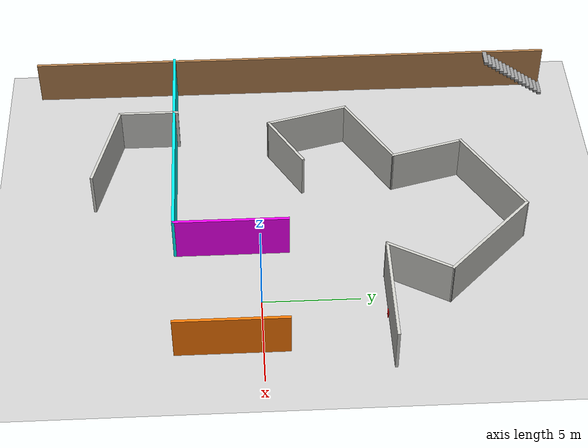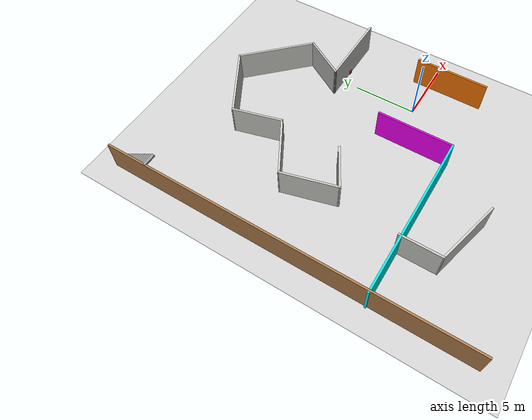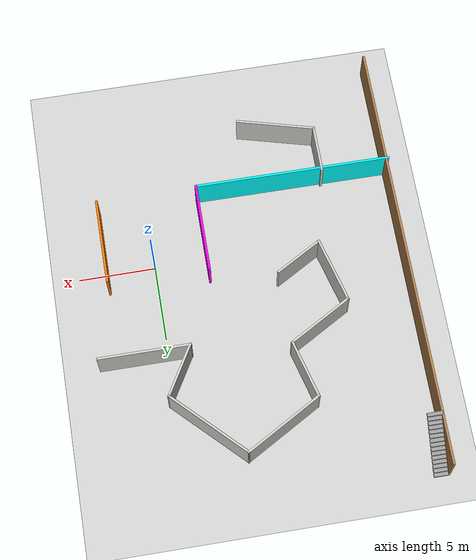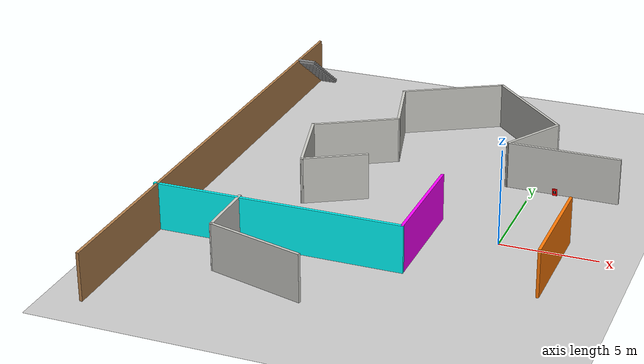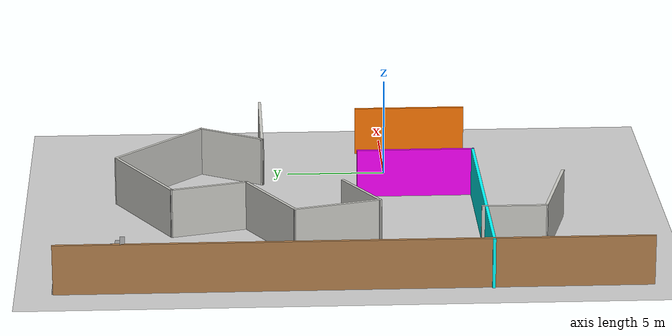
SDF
<sdf version="1.7">
 <world name="default">
  <model name="ground_plane">
   <static>true</static>
   <link name="link">
    <collision name="collision">
     <geometry><plane><normal>0 0 1</normal><size>100 100</size></plane></geometry>
    </collision>
    <visual name="visual">
     <geometry><plane><normal>0 0 1</normal><size>100 100</size></plane></geometry>
     <material>
      <ambient>0.8 0.8 0.8 1</ambient>
      <diffuse>0.8 0.8 0.8 1</diffuse>
      <specular>0.8 0.8 0.8 1</specular>
     </material>
    </visual>
   </link>
  </model>
  <model name="AMR_navigation_world">
   <link name="Stairs_0">
    <visual name="Stairs_0_Visual_0">
     <pose>-19.7483 14.2861 0.083333 0 -0 0</pose>
     <geometry><box><size>1 0.233333 0.166667</size></box></geometry>
     <material>
      <script><uri>file://media/materials/scripts/gazebo.material</uri><name>Gazebo/Grey</name></script>
      <ambient>1 1 1 1</ambient>
      <shader type="pixel"/>
     </material>
     <meta><layer>0</layer></meta>
    </visual>
    <visual name="Stairs_0_Visual_1">
     <pose>-19.7483 14.0528 0.25 0 -0 0</pose>
     <geometry><box><size>1 0.233333 0.166667</size></box></geometry>
     <material>
      <script><uri>file://media/materials/scripts/gazebo.material</uri><name>Gazebo/Grey</name></script>
      <ambient>1 1 1 1</ambient>
      <shader type="pixel"/>
     </material>
     <meta><layer>0</layer></meta>
    </visual>
    <visual name="Stairs_0_Visual_2">
     <pose>-19.7483 13.8195 0.416667 0 -0 0</pose>
     <geometry><box><size>1 0.233333 0.166667</size></box></geometry>
     <material>
      <script><uri>file://media/materials/scripts/gazebo.material</uri><name>Gazebo/Grey</name></script>
      <ambient>1 1 1 1</ambient>
      <shader type="pixel"/>
     </material>
     <meta><layer>0</layer></meta>
    </visual>
    <visual name="Stairs_0_Visual_3">
     <pose>-19.7483 13.5861 0.583333 0 -0 0</pose>
     <geometry><box><size>1 0.233333 0.166667</size></box></geometry>
     <material>
      <script><uri>file://media/materials/scripts/gazebo.material</uri><name>Gazebo/Grey</name></script>
      <ambient>1 1 1 1</ambient>
      <shader type="pixel"/>
     </material>
     <meta><layer>0</layer></meta>
    </visual>
    <visual name="Stairs_0_Visual_4">
     <pose>-19.7483 13.3528 0.75 0 -0 0</pose>
     <geometry><box><size>1 0.233333 0.166667</size></box></geometry>
     <material>
      <script><uri>file://media/materials/scripts/gazebo.material</uri><name>Gazebo/Grey</name></script>
      <ambient>1 1 1 1</ambient>
      <shader type="pixel"/>
     </material>
     <meta><layer>0</layer></meta>
    </visual>
    <visual name="Stairs_0_Visual_5">
     <pose>-19.7483 13.1195 0.916667 0 -0 0</pose>
     <geometry><box><size>1 0.233333 0.166667</size></box></geometry>
     <material>
      <script><uri>file://media/materials/scripts/gazebo.material</uri><name>Gazebo/Grey</name></script>
      <ambient>1 1 1 1</ambient>
      <shader type="pixel"/>
     </material>
     <meta><layer>0</layer></meta>
    </visual>
    <visual name="Stairs_0_Visual_6">
     <pose>-19.7483 12.8861 1.08333 0 -0 0</pose>
     <geometry><box><size>1 0.233333 0.166667</size></box></geometry>
     <material>
      <script><uri>file://media/materials/scripts/gazebo.material</uri><name>Gazebo/Grey</name></script>
      <ambient>1 1 1 1</ambient>
      <shader type="pixel"/>
     </material>
     <meta><layer>0</layer></meta>
    </visual>
    <visual name="Stairs_0_Visual_7">
     <pose>-19.7483 12.6528 1.25 0 -0 0</pose>
     <geometry><box><size>1 0.233333 0.166667</size></box></geometry>
     <material>
      <script><uri>file://media/materials/scripts/gazebo.material</uri><name>Gazebo/Grey</name></script>
      <ambient>1 1 1 1</ambient>
      <shader type="pixel"/>
     </material>
     <meta><layer>0</layer></meta>
    </visual>
    <visual name="Stairs_0_Visual_8">
     <pose>-19.7483 12.4195 1.41667 0 -0 0</pose>
     <geometry><box><size>1 0.233333 0.166667</size></box></geometry>
     <material>
      <script><uri>file://media/materials/scripts/gazebo.material</uri><name>Gazebo/Grey</name></script>
      <ambient>1 1 1 1</ambient>
      <shader type="pixel"/>
     </material>
     <meta><layer>0</layer></meta>
    </visual>
    <visual name="Stairs_0_Visual_9">
     <pose>-19.7483 12.1861 1.58333 0 -0 0</pose>
     <geometry><box><size>1 0.233333 0.166667</size></box></geometry>
     <material>
      <script><uri>file://media/materials/scripts/gazebo.material</uri><name>Gazebo/Grey</name></script>
      <ambient>1 1 1 1</ambient>
      <shader type="pixel"/>
     </material>
     <meta><layer>0</layer></meta>
    </visual>
    <visual name="Stairs_0_Visual_10">
     <pose>-19.7483 11.9528 1.75 0 -0 0</pose>
     <geometry><box><size>1 0.233333 0.166667</size></box></geometry>
     <material>
      <script><uri>file://media/materials/scripts/gazebo.material</uri><name>Gazebo/Grey</name></script>
      <ambient>1 1 1 1</ambient>
      <shader type="pixel"/>
     </material>
     <meta><layer>0</layer></meta>
    </visual>
    <visual name="Stairs_0_Visual_11">
     <pose>-19.7483 11.7195 1.91667 0 -0 0</pose>
     <geometry><box><size>1 0.233333 0.166667</size></box></geometry>
     <material>
      <script><uri>file://media/materials/scripts/gazebo.material</uri><name>Gazebo/Grey</name></script>
      <ambient>1 1 1 1</ambient>
      <shader type="pixel"/>
     </material>
     <meta><layer>0</layer></meta>
    </visual>
    <visual name="Stairs_0_Visual_12">
     <pose>-19.7483 11.4861 2.08333 0 -0 0</pose>
     <geometry><box><size>1 0.233333 0.166667</size></box></geometry>
     <material>
      <script><uri>file://media/materials/scripts/gazebo.material</uri><name>Gazebo/Grey</name></script>
      <ambient>1 1 1 1</ambient>
      <shader type="pixel"/>
     </material>
     <meta><layer>0</layer></meta>
    </visual>
    <visual name="Stairs_0_Visual_13">
     <pose>-19.7483 11.2528 2.25 0 -0 0</pose>
     <geometry><box><size>1 0.233333 0.166667</size></box></geometry>
     <material>
      <script><uri>file://media/materials/scripts/gazebo.material</uri><name>Gazebo/Grey</name></script>
      <ambient>1 1 1 1</ambient>
      <shader type="pixel"/>
     </material>
     <meta><layer>0</layer></meta>
    </visual>
    <visual name="Stairs_0_Visual_14">
     <pose>-19.7483 11.0195 2.41667 0 -0 0</pose>
     <geometry><box><size>1 0.233333 0.166667</size></box></geometry>
     <material>
      <script><uri>file://media/materials/scripts/gazebo.material</uri><name>Gazebo/Grey</name></script>
      <ambient>1 1 1 1</ambient>
      <shader type="pixel"/>
     </material>
     <meta><layer>0</layer></meta>
    </visual>
    <collision name="Stairs_0_Collision_0">
     <pose>-19.7483 14.2861 0.083333 0 -0 0</pose>
     <geometry><box><size>1 0.233333 0.166667</size></box></geometry>
     <surface>
      <friction>
       <ode><mu>1</mu><mu2>1</mu2><fdir1>0 0 0</fdir1><slip1>0</slip1><slip2>0</slip2></ode>
       <torsional>
        <coefficient>1</coefficient>
        <patch_radius>0</patch_radius>
        <surface_radius>0</surface_radius>
        <use_patch_radius>1</use_patch_radius>
        <ode><slip>0</slip></ode>
       </torsional>
      </friction>
      <bounce><restitution_coefficient>0</restitution_coefficient><threshold>1e+06</threshold></bounce>
      <contact>
       <collide_without_contact>0</collide_without_contact>
       <collide_without_contact_bitmask>1</collide_without_contact_bitmask>
       <collide_bitmask>1</collide_bitmask>
       <ode>
        <soft_cfm>0</soft_cfm>
        <soft_erp>0.2</soft_erp>
        <kp>1e+13</kp>
        <kd>1</kd>
        <max_vel>0.01</max_vel>
        <min_depth>0</min_depth>
       </ode>
       <bullet>
        <split_impulse>1</split_impulse>
        <split_impulse_penetration_threshold>-0.01</split_impulse_penetration_threshold>
        <soft_cfm>0</soft_cfm>
        <soft_erp>0.2</soft_erp>
        <kp>1e+13</kp>
        <kd>1</kd>
       </bullet>
      </contact>
     </surface>
    </collision>
    <collision name="Stairs_0_Collision_1">
     <pose>-19.7483 14.0528 0.25 0 -0 0</pose>
     <geometry><box><size>1 0.233333 0.166667</size></box></geometry>
     <surface>
      <friction>
       <ode><mu>1</mu><mu2>1</mu2><fdir1>0 0 0</fdir1><slip1>0</slip1><slip2>0</slip2></ode>
       <torsional>
        <coefficient>1</coefficient>
        <patch_radius>0</patch_radius>
        <surface_radius>0</surface_radius>
        <use_patch_radius>1</use_patch_radius>
        <ode><slip>0</slip></ode>
       </torsional>
      </friction>
      <bounce><restitution_coefficient>0</restitution_coefficient><threshold>1e+06</threshold></bounce>
      <contact>
       <collide_without_contact>0</collide_without_contact>
       <collide_without_contact_bitmask>1</collide_without_contact_bitmask>
       <collide_bitmask>1</collide_bitmask>
       <ode>
        <soft_cfm>0</soft_cfm>
        <soft_erp>0.2</soft_erp>
        <kp>1e+13</kp>
        <kd>1</kd>
        <max_vel>0.01</max_vel>
        <min_depth>0</min_depth>
       </ode>
       <bullet>
        <split_impulse>1</split_impulse>
        <split_impulse_penetration_threshold>-0.01</split_impulse_penetration_threshold>
        <soft_cfm>0</soft_cfm>
        <soft_erp>0.2</soft_erp>
        <kp>1e+13</kp>
        <kd>1</kd>
       </bullet>
      </contact>
     </surface>
    </collision>
    <collision name="Stairs_0_Collision_2">
     <pose>-19.7483 13.8195 0.416667 0 -0 0</pose>
     <geometry><box><size>1 0.233333 0.166667</size></box></geometry>
     <surface>
      <friction>
       <ode><mu>1</mu><mu2>1</mu2><fdir1>0 0 0</fdir1><slip1>0</slip1><slip2>0</slip2></ode>
       <torsional>
        <coefficient>1</coefficient>
        <patch_radius>0</patch_radius>
        <surface_radius>0</surface_radius>
        <use_patch_radius>1</use_patch_radius>
        <ode><slip>0</slip></ode>
       </torsional>
      </friction>
      <bounce><restitution_coefficient>0</restitution_coefficient><threshold>1e+06</threshold></bounce>
      <contact>
       <collide_without_contact>0</collide_without_contact>
       <collide_without_contact_bitmask>1</collide_without_contact_bitmask>
       <collide_bitmask>1</collide_bitmask>
       <ode>
        <soft_cfm>0</soft_cfm>
        <soft_erp>0.2</soft_erp>
        <kp>1e+13</kp>
        <kd>1</kd>
        <max_vel>0.01</max_vel>
        <min_depth>0</min_depth>
       </ode>
       <bullet>
        <split_impulse>1</split_impulse>
        <split_impulse_penetration_threshold>-0.01</split_impulse_penetration_threshold>
        <soft_cfm>0</soft_cfm>
        <soft_erp>0.2</soft_erp>
        <kp>1e+13</kp>
        <kd>1</kd>
       </bullet>
      </contact>
     </surface>
    </collision>
    <collision name="Stairs_0_Collision_3">
     <pose>-19.7483 13.5861 0.583333 0 -0 0</pose>
     <geometry><box><size>1 0.233333 0.166667</size></box></geometry>
     <surface>
      <friction>
       <ode><mu>1</mu><mu2>1</mu2><fdir1>0 0 0</fdir1><slip1>0</slip1><slip2>0</slip2></ode>
       <torsional>
        <coefficient>1</coefficient>
        <patch_radius>0</patch_radius>
        <surface_radius>0</surface_radius>
        <use_patch_radius>1</use_patch_radius>
        <ode><slip>0</slip></ode>
       </torsional>
      </friction>
      <bounce><restitution_coefficient>0</restitution_coefficient><threshold>1e+06</threshold></bounce>
      <contact>
       <collide_without_contact>0</collide_without_contact>
       <collide_without_contact_bitmask>1</collide_without_contact_bitmask>
       <collide_bitmask>1</collide_bitmask>
       <ode>
        <soft_cfm>0</soft_cfm>
        <soft_erp>0.2</soft_erp>
        <kp>1e+13</kp>
        <kd>1</kd>
        <max_vel>0.01</max_vel>
        <min_depth>0</min_depth>
       </ode>
       <bullet>
        <split_impulse>1</split_impulse>
        <split_impulse_penetration_threshold>-0.01</split_impulse_penetration_threshold>
        <soft_cfm>0</soft_cfm>
        <soft_erp>0.2</soft_erp>
        <kp>1e+13</kp>
        <kd>1</kd>
       </bullet>
      </contact>
     </surface>
    </collision>
    <collision name="Stairs_0_Collision_4">
     <pose>-19.7483 13.3528 0.75 0 -0 0</pose>
     <geometry><box><size>1 0.233333 0.166667</size></box></geometry>
     <surface>
      <friction>
       <ode><mu>1</mu><mu2>1</mu2><fdir1>0 0 0</fdir1><slip1>0</slip1><slip2>0</slip2></ode>
       <torsional>
        <coefficient>1</coefficient>
        <patch_radius>0</patch_radius>
        <surface_radius>0</surface_radius>
        <use_patch_radius>1</use_patch_radius>
        <ode><slip>0</slip></ode>
       </torsional>
      </friction>
      <bounce><restitution_coefficient>0</restitution_coefficient><threshold>1e+06</threshold></bounce>
      <contact>
       <collide_without_contact>0</collide_without_contact>
       <collide_without_contact_bitmask>1</collide_without_contact_bitmask>
       <collide_bitmask>1</collide_bitmask>
       <ode>
        <soft_cfm>0</soft_cfm>
        <soft_erp>0.2</soft_erp>
        <kp>1e+13</kp>
        <kd>1</kd>
        <max_vel>0.01</max_vel>
        <min_depth>0</min_depth>
       </ode>
       <bullet>
        <split_impulse>1</split_impulse>
        <split_impulse_penetration_threshold>-0.01</split_impulse_penetration_threshold>
        <soft_cfm>0</soft_cfm>
        <soft_erp>0.2</soft_erp>
        <kp>1e+13</kp>
        <kd>1</kd>
       </bullet>
      </contact>
     </surface>
    </collision>
    <collision name="Stairs_0_Collision_5">
     <pose>-19.7483 13.1195 0.916667 0 -0 0</pose>
     <geometry><box><size>1 0.233333 0.166667</size></box></geometry>
     <surface>
      <friction>
       <ode><mu>1</mu><mu2>1</mu2><fdir1>0 0 0</fdir1><slip1>0</slip1><slip2>0</slip2></ode>
       <torsional>
        <coefficient>1</coefficient>
        <patch_radius>0</patch_radius>
        <surface_radius>0</surface_radius>
        <use_patch_radius>1</use_patch_radius>
        <ode><slip>0</slip></ode>
       </torsional>
      </friction>
      <bounce><restitution_coefficient>0</restitution_coefficient><threshold>1e+06</threshold></bounce>
      <contact>
       <collide_without_contact>0</collide_without_contact>
       <collide_without_contact_bitmask>1</collide_without_contact_bitmask>
       <collide_bitmask>1</collide_bitmask>
       <ode>
        <soft_cfm>0</soft_cfm>
        <soft_erp>0.2</soft_erp>
        <kp>1e+13</kp>
        <kd>1</kd>
        <max_vel>0.01</max_vel>
        <min_depth>0</min_depth>
       </ode>
       <bullet>
        <split_impulse>1</split_impulse>
        <split_impulse_penetration_threshold>-0.01</split_impulse_penetration_threshold>
        <soft_cfm>0</soft_cfm>
        <soft_erp>0.2</soft_erp>
        <kp>1e+13</kp>
        <kd>1</kd>
       </bullet>
      </contact>
     </surface>
    </collision>
    <collision name="Stairs_0_Collision_6">
     <pose>-19.7483 12.8861 1.08333 0 -0 0</pose>
     <geometry><box><size>1 0.233333 0.166667</size></box></geometry>
     <surface>
      <friction>
       <ode><mu>1</mu><mu2>1</mu2><fdir1>0 0 0</fdir1><slip1>0</slip1><slip2>0</slip2></ode>
       <torsional>
        <coefficient>1</coefficient>
        <patch_radius>0</patch_radius>
        <surface_radius>0</surface_radius>
        <use_patch_radius>1</use_patch_radius>
        <ode><slip>0</slip></ode>
       </torsional>
      </friction>
      <bounce><restitution_coefficient>0</restitution_coefficient><threshold>1e+06</threshold></bounce>
      <contact>
       <collide_without_contact>0</collide_without_contact>
       <collide_without_contact_bitmask>1</collide_without_contact_bitmask>
       <collide_bitmask>1</collide_bitmask>
       <ode>
        <soft_cfm>0</soft_cfm>
        <soft_erp>0.2</soft_erp>
        <kp>1e+13</kp>
        <kd>1</kd>
        <max_vel>0.01</max_vel>
        <min_depth>0</min_depth>
       </ode>
       <bullet>
        <split_impulse>1</split_impulse>
        <split_impulse_penetration_threshold>-0.01</split_impulse_penetration_threshold>
        <soft_cfm>0</soft_cfm>
        <soft_erp>0.2</soft_erp>
        <kp>1e+13</kp>
        <kd>1</kd>
       </bullet>
      </contact>
     </surface>
    </collision>
    <collision name="Stairs_0_Collision_7">
     <pose>-19.7483 12.6528 1.25 0 -0 0</pose>
     <geometry><box><size>1 0.233333 0.166667</size></box></geometry>
     <surface>
      <friction>
       <ode><mu>1</mu><mu2>1</mu2><fdir1>0 0 0</fdir1><slip1>0</slip1><slip2>0</slip2></ode>
       <torsional>
        <coefficient>1</coefficient>
        <patch_radius>0</patch_radius>
        <surface_radius>0</surface_radius>
        <use_patch_radius>1</use_patch_radius>
        <ode><slip>0</slip></ode>
       </torsional>
      </friction>
      <bounce><restitution_coefficient>0</restitution_coefficient><threshold>1e+06</threshold></bounce>
      <contact>
       <collide_without_contact>0</collide_without_contact>
       <collide_without_contact_bitmask>1</collide_without_contact_bitmask>
       <collide_bitmask>1</collide_bitmask>
       <ode>
        <soft_cfm>0</soft_cfm>
        <soft_erp>0.2</soft_erp>
        <kp>1e+13</kp>
        <kd>1</kd>
        <max_vel>0.01</max_vel>
        <min_depth>0</min_depth>
       </ode>
       <bullet>
        <split_impulse>1</split_impulse>
        <split_impulse_penetration_threshold>-0.01</split_impulse_penetration_threshold>
        <soft_cfm>0</soft_cfm>
        <soft_erp>0.2</soft_erp>
        <kp>1e+13</kp>
        <kd>1</kd>
       </bullet>
      </contact>
     </surface>
    </collision>
    <collision name="Stairs_0_Collision_8">
     <pose>-19.7483 12.4195 1.41667 0 -0 0</pose>
     <geometry><box><size>1 0.233333 0.166667</size></box></geometry>
     <surface>
      <friction>
       <ode><mu>1</mu><mu2>1</mu2><fdir1>0 0 0</fdir1><slip1>0</slip1><slip2>0</slip2></ode>
       <torsional>
        <coefficient>1</coefficient>
        <patch_radius>0</patch_radius>
        <surface_radius>0</surface_radius>
        <use_patch_radius>1</use_patch_radius>
        <ode><slip>0</slip></ode>
       </torsional>
      </friction>
      <bounce><restitution_coefficient>0</restitution_coefficient><threshold>1e+06</threshold></bounce>
      <contact>
       <collide_without_contact>0</collide_without_contact>
       <collide_without_contact_bitmask>1</collide_without_contact_bitmask>
       <collide_bitmask>1</collide_bitmask>
       <ode>
        <soft_cfm>0</soft_cfm>
        <soft_erp>0.2</soft_erp>
        <kp>1e+13</kp>
        <kd>1</kd>
        <max_vel>0.01</max_vel>
        <min_depth>0</min_depth>
       </ode>
       <bullet>
        <split_impulse>1</split_impulse>
        <split_impulse_penetration_threshold>-0.01</split_impulse_penetration_threshold>
        <soft_cfm>0</soft_cfm>
        <soft_erp>0.2</soft_erp>
        <kp>1e+13</kp>
        <kd>1</kd>
       </bullet>
      </contact>
     </surface>
    </collision>
    <collision name="Stairs_0_Collision_9">
     <pose>-19.7483 12.1861 1.58333 0 -0 0</pose>
     <geometry><box><size>1 0.233333 0.166667</size></box></geometry>
     <surface>
      <friction>
       <ode><mu>1</mu><mu2>1</mu2><fdir1>0 0 0</fdir1><slip1>0</slip1><slip2>0</slip2></ode>
       <torsional>
        <coefficient>1</coefficient>
        <patch_radius>0</patch_radius>
        <surface_radius>0</surface_radius>
        <use_patch_radius>1</use_patch_radius>
        <ode><slip>0</slip></ode>
       </torsional>
      </friction>
      <bounce><restitution_coefficient>0</restitution_coefficient><threshold>1e+06</threshold></bounce>
      <contact>
       <collide_without_contact>0</collide_without_contact>
       <collide_without_contact_bitmask>1</collide_without_contact_bitmask>
       <collide_bitmask>1</collide_bitmask>
       <ode>
        <soft_cfm>0</soft_cfm>
        <soft_erp>0.2</soft_erp>
        <kp>1e+13</kp>
        <kd>1</kd>
        <max_vel>0.01</max_vel>
        <min_depth>0</min_depth>
       </ode>
       <bullet>
        <split_impulse>1</split_impulse>
        <split_impulse_penetration_threshold>-0.01</split_impulse_penetration_threshold>
        <soft_cfm>0</soft_cfm>
        <soft_erp>0.2</soft_erp>
        <kp>1e+13</kp>
        <kd>1</kd>
       </bullet>
      </contact>
     </surface>
    </collision>
    <collision name="Stairs_0_Collision_10">
     <pose>-19.7483 11.9528 1.75 0 -0 0</pose>
     <geometry><box><size>1 0.233333 0.166667</size></box></geometry>
     <surface>
      <friction>
       <ode><mu>1</mu><mu2>1</mu2><fdir1>0 0 0</fdir1><slip1>0</slip1><slip2>0</slip2></ode>
       <torsional>
        <coefficient>1</coefficient>
        <patch_radius>0</patch_radius>
        <surface_radius>0</surface_radius>
        <use_patch_radius>1</use_patch_radius>
        <ode><slip>0</slip></ode>
       </torsional>
      </friction>
      <bounce><restitution_coefficient>0</restitution_coefficient><threshold>1e+06</threshold></bounce>
      <contact>
       <collide_without_contact>0</collide_without_contact>
       <collide_without_contact_bitmask>1</collide_without_contact_bitmask>
       <collide_bitmask>1</collide_bitmask>
       <ode>
        <soft_cfm>0</soft_cfm>
        <soft_erp>0.2</soft_erp>
        <kp>1e+13</kp>
        <kd>1</kd>
        <max_vel>0.01</max_vel>
        <min_depth>0</min_depth>
       </ode>
       <bullet>
        <split_impulse>1</split_impulse>
        <split_impulse_penetration_threshold>-0.01</split_impulse_penetration_threshold>
        <soft_cfm>0</soft_cfm>
        <soft_erp>0.2</soft_erp>
        <kp>1e+13</kp>
        <kd>1</kd>
       </bullet>
      </contact>
     </surface>
    </collision>
    <collision name="Stairs_0_Collision_11">
     <pose>-19.7483 11.7195 1.91667 0 -0 0</pose>
     <geometry><box><size>1 0.233333 0.166667</size></box></geometry>
     <surface>
      <friction>
       <ode><mu>1</mu><mu2>1</mu2><fdir1>0 0 0</fdir1><slip1>0</slip1><slip2>0</slip2></ode>
       <torsional>
        <coefficient>1</coefficient>
        <patch_radius>0</patch_radius>
        <surface_radius>0</surface_radius>
        <use_patch_radius>1</use_patch_radius>
        <ode><slip>0</slip></ode>
       </torsional>
      </friction>
      <bounce><restitution_coefficient>0</restitution_coefficient><threshold>1e+06</threshold></bounce>
      <contact>
       <collide_without_contact>0</collide_without_contact>
       <collide_without_contact_bitmask>1</collide_without_contact_bitmask>
       <collide_bitmask>1</collide_bitmask>
       <ode>
        <soft_cfm>0</soft_cfm>
        <soft_erp>0.2</soft_erp>
        <kp>1e+13</kp>
        <kd>1</kd>
        <max_vel>0.01</max_vel>
        <min_depth>0</min_depth>
       </ode>
       <bullet>
        <split_impulse>1</split_impulse>
        <split_impulse_penetration_threshold>-0.01</split_impulse_penetration_threshold>
        <soft_cfm>0</soft_cfm>
        <soft_erp>0.2</soft_erp>
        <kp>1e+13</kp>
        <kd>1</kd>
       </bullet>
      </contact>
     </surface>
    </collision>
    <collision name="Stairs_0_Collision_12">
     <pose>-19.7483 11.4861 2.08333 0 -0 0</pose>
     <geometry><box><size>1 0.233333 0.166667</size></box></geometry>
     <surface>
      <friction>
       <ode><mu>1</mu><mu2>1</mu2><fdir1>0 0 0</fdir1><slip1>0</slip1><slip2>0</slip2></ode>
       <torsional>
        <coefficient>1</coefficient>
        <patch_radius>0</patch_radius>
        <surface_radius>0</surface_radius>
        <use_patch_radius>1</use_patch_radius>
        <ode><slip>0</slip></ode>
       </torsional>
      </friction>
      <bounce><restitution_coefficient>0</restitution_coefficient><threshold>1e+06</threshold></bounce>
      <contact>
       <collide_without_contact>0</collide_without_contact>
       <collide_without_contact_bitmask>1</collide_without_contact_bitmask>
       <collide_bitmask>1</collide_bitmask>
       <ode>
        <soft_cfm>0</soft_cfm>
        <soft_erp>0.2</soft_erp>
        <kp>1e+13</kp>
        <kd>1</kd>
        <max_vel>0.01</max_vel>
        <min_depth>0</min_depth>
       </ode>
       <bullet>
        <split_impulse>1</split_impulse>
        <split_impulse_penetration_threshold>-0.01</split_impulse_penetration_threshold>
        <soft_cfm>0</soft_cfm>
        <soft_erp>0.2</soft_erp>
        <kp>1e+13</kp>
        <kd>1</kd>
       </bullet>
      </contact>
     </surface>
    </collision>
    <collision name="Stairs_0_Collision_13">
     <pose>-19.7483 11.2528 2.25 0 -0 0</pose>
     <geometry><box><size>1 0.233333 0.166667</size></box></geometry>
     <surface>
      <friction>
       <ode><mu>1</mu><mu2>1</mu2><fdir1>0 0 0</fdir1><slip1>0</slip1><slip2>0</slip2></ode>
       <torsional>
        <coefficient>1</coefficient>
        <patch_radius>0</patch_radius>
        <surface_radius>0</surface_radius>
        <use_patch_radius>1</use_patch_radius>
        <ode><slip>0</slip></ode>
       </torsional>
      </friction>
      <bounce><restitution_coefficient>0</restitution_coefficient><threshold>1e+06</threshold></bounce>
      <contact>
       <collide_without_contact>0</collide_without_contact>
       <collide_without_contact_bitmask>1</collide_without_contact_bitmask>
       <collide_bitmask>1</collide_bitmask>
       <ode>
        <soft_cfm>0</soft_cfm>
        <soft_erp>0.2</soft_erp>
        <kp>1e+13</kp>
        <kd>1</kd>
        <max_vel>0.01</max_vel>
        <min_depth>0</min_depth>
       </ode>
       <bullet>
        <split_impulse>1</split_impulse>
        <split_impulse_penetration_threshold>-0.01</split_impulse_penetration_threshold>
        <soft_cfm>0</soft_cfm>
        <soft_erp>0.2</soft_erp>
        <kp>1e+13</kp>
        <kd>1</kd>
       </bullet>
      </contact>
     </surface>
    </collision>
    <collision name="Stairs_0_Collision_14">
     <pose>-19.7483 11.0195 2.41667 0 -0 0</pose>
     <geometry><box><size>1 0.233333 0.166667</size></box></geometry>
     <surface>
      <friction>
       <ode><mu>1</mu><mu2>1</mu2><fdir1>0 0 0</fdir1><slip1>0</slip1><slip2>0</slip2></ode>
       <torsional>
        <coefficient>1</coefficient>
        <patch_radius>0</patch_radius>
        <surface_radius>0</surface_radius>
        <use_patch_radius>1</use_patch_radius>
        <ode><slip>0</slip></ode>
       </torsional>
      </friction>
      <bounce><restitution_coefficient>0</restitution_coefficient><threshold>1e+06</threshold></bounce>
      <contact>
       <collide_without_contact>0</collide_without_contact>
       <collide_without_contact_bitmask>1</collide_without_contact_bitmask>
       <collide_bitmask>1</collide_bitmask>
       <ode>
        <soft_cfm>0</soft_cfm>
        <soft_erp>0.2</soft_erp>
        <kp>1e+13</kp>
        <kd>1</kd>
        <max_vel>0.01</max_vel>
        <min_depth>0</min_depth>
       </ode>
       <bullet>
        <split_impulse>1</split_impulse>
        <split_impulse_penetration_threshold>-0.01</split_impulse_penetration_threshold>
        <soft_cfm>0</soft_cfm>
        <soft_erp>0.2</soft_erp>
        <kp>1e+13</kp>
        <kd>1</kd>
       </bullet>
      </contact>
     </surface>
    </collision>
   </link>
   <link name="Wall_11">
    <pose>-20.2378 -0.027791 0 0 -0 1.5708</pose>
    <visual name="Wall_11_Visual">
     <pose>0 0 1.25 0 -0 0</pose>
     <geometry><box><size>28.75 0.15 2.5</size></box></geometry>
     <material>
      <script><uri>file://media/materials/scripts/gazebo.material</uri><name>Gazebo/Wood</name></script>
      <ambient>1 0 0 1</ambient>
      <shader type="pixel"/>
     </material>
     <meta><layer>0</layer></meta>
    </visual>
    <collision name="Wall_11_Collision">
     <pose>0 0 1.25 0 -0 0</pose>
     <geometry><box><size>28.75 0.15 2.5</size></box></geometry>
     <surface>
      <friction>
       <ode><mu>1</mu><mu2>1</mu2><fdir1>0 0 0</fdir1><slip1>0</slip1><slip2>0</slip2></ode>
       <torsional>
        <coefficient>1</coefficient>
        <patch_radius>0</patch_radius>
        <surface_radius>0</surface_radius>
        <use_patch_radius>1</use_patch_radius>
        <ode><slip>0</slip></ode>
       </torsional>
      </friction>
      <bounce><restitution_coefficient>0</restitution_coefficient><threshold>1e+06</threshold></bounce>
      <contact>
       <collide_without_contact>0</collide_without_contact>
       <collide_without_contact_bitmask>1</collide_without_contact_bitmask>
       <collide_bitmask>1</collide_bitmask>
       <ode>
        <soft_cfm>0</soft_cfm>
        <soft_erp>0.2</soft_erp>
        <kp>1e+13</kp>
        <kd>1</kd>
        <max_vel>0.01</max_vel>
        <min_depth>0</min_depth>
       </ode>
       <bullet>
        <split_impulse>1</split_impulse>
        <split_impulse_penetration_threshold>-0.01</split_impulse_penetration_threshold>
        <soft_cfm>0</soft_cfm>
        <soft_erp>0.2</soft_erp>
        <kp>1e+13</kp>
        <kd>1</kd>
       </bullet>
      </contact>
     </surface>
    </collision>
   </link>
   <link name="Wall_16">
    <pose>-7.51223 -3.73191 0 0 0 -1.5708</pose>
    <visual name="Wall_16_Visual">
     <pose>0 0 1.25 0 -0 0</pose>
     <geometry><box><size>6 0.15 2.5</size></box></geometry>
     <material>
      <script><uri>file://media/materials/scripts/gazebo.material</uri><name>Gazebo/Grey</name></script>
      <ambient>1 0 1 1</ambient>
      <shader type="pixel"/>
     </material>
     <meta><layer>0</layer></meta>
    </visual>
    <collision name="Wall_16_Collision">
     <pose>0 0 1.25 0 -0 0</pose>
     <geometry><box><size>6 0.15 2.5</size></box></geometry>
     <surface>
      <friction>
       <ode><mu>1</mu><mu2>1</mu2><fdir1>0 0 0</fdir1><slip1>0</slip1><slip2>0</slip2></ode>
       <torsional>
        <coefficient>1</coefficient>
        <patch_radius>0</patch_radius>
        <surface_radius>0</surface_radius>
        <use_patch_radius>1</use_patch_radius>
        <ode><slip>0</slip></ode>
       </torsional>
      </friction>
      <bounce><restitution_coefficient>0</restitution_coefficient><threshold>1e+06</threshold></bounce>
      <contact>
       <collide_without_contact>0</collide_without_contact>
       <collide_without_contact_bitmask>1</collide_without_contact_bitmask>
       <collide_bitmask>1</collide_bitmask>
       <ode>
        <soft_cfm>0</soft_cfm>
        <soft_erp>0.2</soft_erp>
        <kp>1e+13</kp>
        <kd>1</kd>
        <max_vel>0.01</max_vel>
        <min_depth>0</min_depth>
       </ode>
       <bullet>
        <split_impulse>1</split_impulse>
        <split_impulse_penetration_threshold>-0.01</split_impulse_penetration_threshold>
        <soft_cfm>0</soft_cfm>
        <soft_erp>0.2</soft_erp>
        <kp>1e+13</kp>
        <kd>1</kd>
       </bullet>
      </contact>
     </surface>
    </collision>
   </link>
   <link name="Wall_17">
    <pose>-13.9372 -6.65691 0 0 -0 3.14159</pose>
    <visual name="Wall_17_Visual">
     <pose>0 0 1.25 0 -0 0</pose>
     <geometry><box><size>13 0.15 2.5</size></box></geometry>
     <material>
      <script><uri>file://media/materials/scripts/gazebo.material</uri><name>Gazebo/Grey</name></script>
      <ambient>0 1 1 1</ambient>
      <shader type="pixel"/>
     </material>
     <meta><layer>0</layer></meta>
    </visual>
    <collision name="Wall_17_Collision">
     <pose>0 0 1.25 0 -0 0</pose>
     <geometry><box><size>13 0.15 2.5</size></box></geometry>
     <surface>
      <friction>
       <ode><mu>1</mu><mu2>1</mu2><fdir1>0 0 0</fdir1><slip1>0</slip1><slip2>0</slip2></ode>
       <torsional>
        <coefficient>1</coefficient>
        <patch_radius>0</patch_radius>
        <surface_radius>0</surface_radius>
        <use_patch_radius>1</use_patch_radius>
        <ode><slip>0</slip></ode>
       </torsional>
      </friction>
      <bounce><restitution_coefficient>0</restitution_coefficient><threshold>1e+06</threshold></bounce>
      <contact>
       <collide_without_contact>0</collide_without_contact>
       <collide_without_contact_bitmask>1</collide_without_contact_bitmask>
       <collide_bitmask>1</collide_bitmask>
       <ode>
        <soft_cfm>0</soft_cfm>
        <soft_erp>0.2</soft_erp>
        <kp>1e+13</kp>
        <kd>1</kd>
        <max_vel>0.01</max_vel>
        <min_depth>0</min_depth>
       </ode>
       <bullet>
        <split_impulse>1</split_impulse>
        <split_impulse_penetration_threshold>-0.01</split_impulse_penetration_threshold>
        <soft_cfm>0</soft_cfm>
        <soft_erp>0.2</soft_erp>
        <kp>1e+13</kp>
        <kd>1</kd>
       </bullet>
      </contact>
     </surface>
    </collision>
   </link>
   <link name="Wall_19">
    <pose>-0.935334 -3.82104 0 0 0 -1.5708</pose>
    <visual name="Wall_19_Visual">
     <pose>0 0 1.25 0 -0 0</pose>
     <geometry><box><size>5.75 0.15 2.5</size></box></geometry>
     <material>
      <script><uri>file://media/materials/scripts/gazebo.material</uri><name>Gazebo/Grey</name></script>
      <ambient>0.996078 0.47451 0.0196078 1</ambient>
      <shader type="pixel"/>
     </material>
     <meta><layer>0</layer></meta>
    </visual>
    <collision name="Wall_19_Collision">
     <pose>0 0 1.25 0 -0 0</pose>
     <geometry><box><size>5.75 0.15 2.5</size></box></geometry>
     <surface>
      <friction>
       <ode><mu>1</mu><mu2>1</mu2><fdir1>0 0 0</fdir1><slip1>0</slip1><slip2>0</slip2></ode>
       <torsional>
        <coefficient>1</coefficient>
        <patch_radius>0</patch_radius>
        <surface_radius>0</surface_radius>
        <use_patch_radius>1</use_patch_radius>
        <ode><slip>0</slip></ode>
       </torsional>
      </friction>
      <bounce><restitution_coefficient>0</restitution_coefficient><threshold>1e+06</threshold></bounce>
      <contact>
       <collide_without_contact>0</collide_without_contact>
       <collide_without_contact_bitmask>1</collide_without_contact_bitmask>
       <collide_bitmask>1</collide_bitmask>
       <ode>
        <soft_cfm>0</soft_cfm>
        <soft_erp>0.2</soft_erp>
        <kp>1e+13</kp>
        <kd>1</kd>
        <max_vel>0.01</max_vel>
        <min_depth>0</min_depth>
       </ode>
       <bullet>
        <split_impulse>1</split_impulse>
        <split_impulse_penetration_threshold>-0.01</split_impulse_penetration_threshold>
        <soft_cfm>0</soft_cfm>
        <soft_erp>0.2</soft_erp>
        <kp>1e+13</kp>
        <kd>1</kd>
       </bullet>
      </contact>
     </surface>
    </collision>
   </link>
   <link name="Wall_32">
    <pose>-2.61033 4.07896 0 0 -0 3.14159</pose>
    <visual name="Wall_32_Visual">
     <pose>0 0 1.25 0 -0 0</pose>
     <geometry><box><size>6 0.15 2.5</size></box></geometry>
     <material>
      <script><uri>file://media/materials/scripts/gazebo.material</uri><name>Gazebo/CeilingTiled</name></script>
      <ambient>1 1 1 1</ambient>
      <shader type="pixel"/>
     </material>
     <meta><layer>0</layer></meta>
    </visual>
    <collision name="Wall_32_Collision">
     <pose>0 0 1.25 0 -0 0</pose>
     <geometry><box><size>6 0.15 2.5</size></box></geometry>
     <surface>
      <friction>
       <ode><mu>1</mu><mu2>1</mu2><fdir1>0 0 0</fdir1><slip1>0</slip1><slip2>0</slip2></ode>
       <torsional>
        <coefficient>1</coefficient>
        <patch_radius>0</patch_radius>
        <surface_radius>0</surface_radius>
        <use_patch_radius>1</use_patch_radius>
        <ode><slip>0</slip></ode>
       </torsional>
      </friction>
      <bounce><restitution_coefficient>0</restitution_coefficient><threshold>1e+06</threshold></bounce>
      <contact>
       <collide_without_contact>0</collide_without_contact>
       <collide_without_contact_bitmask>1</collide_without_contact_bitmask>
       <collide_bitmask>1</collide_bitmask>
       <ode>
        <soft_cfm>0</soft_cfm>
        <soft_erp>0.2</soft_erp>
        <kp>1e+13</kp>
        <kd>1</kd>
        <max_vel>0.01</max_vel>
        <min_depth>0</min_depth>
       </ode>
       <bullet>
        <split_impulse>1</split_impulse>
        <split_impulse_penetration_threshold>-0.01</split_impulse_penetration_threshold>
        <soft_cfm>0</soft_cfm>
        <soft_erp>0.2</soft_erp>
        <kp>1e+13</kp>
        <kd>1</kd>
       </bullet>
      </contact>
     </surface>
    </collision>
   </link>
   <link name="Wall_33">
    <pose>-4.63533 5.63781 0 0 -0 1.0472</pose>
    <visual name="Wall_33_Visual">
     <pose>0 0 1.25 0 -0 0</pose>
     <geometry><box><size>3.75 0.15 2.5</size></box></geometry>
     <material>
      <script><uri>file://media/materials/scripts/gazebo.material</uri><name>Gazebo/CeilingTiled</name></script>
      <ambient>1 1 1 1</ambient>
      <shader type="pixel"/>
     </material>
     <meta><layer>0</layer></meta>
    </visual>
    <collision name="Wall_33_Collision">
     <pose>0 0 1.25 0 -0 0</pose>
     <geometry><box><size>3.75 0.15 2.5</size></box></geometry>
     <surface>
      <friction>
       <ode><mu>1</mu><mu2>1</mu2><fdir1>0 0 0</fdir1><slip1>0</slip1><slip2>0</slip2></ode>
       <torsional>
        <coefficient>1</coefficient>
        <patch_radius>0</patch_radius>
        <surface_radius>0</surface_radius>
        <use_patch_radius>1</use_patch_radius>
        <ode><slip>0</slip></ode>
       </torsional>
      </friction>
      <bounce><restitution_coefficient>0</restitution_coefficient><threshold>1e+06</threshold></bounce>
      <contact>
       <collide_without_contact>0</collide_without_contact>
       <collide_without_contact_bitmask>1</collide_without_contact_bitmask>
       <collide_bitmask>1</collide_bitmask>
       <ode>
        <soft_cfm>0</soft_cfm>
        <soft_erp>0.2</soft_erp>
        <kp>1e+13</kp>
        <kd>1</kd>
        <max_vel>0.01</max_vel>
        <min_depth>0</min_depth>
       </ode>
       <bullet>
        <split_impulse>1</split_impulse>
        <split_impulse_penetration_threshold>-0.01</split_impulse_penetration_threshold>
        <soft_cfm>0</soft_cfm>
        <soft_erp>0.2</soft_erp>
        <kp>1e+13</kp>
        <kd>1</kd>
       </bullet>
      </contact>
     </surface>
    </collision>
   </link>
   <link name="Wall_34">
    <pose>-5.89201 9.35333 0 0 -0 2.35619</pose>
    <visual name="Wall_34_Visual">
     <pose>0 0 1.25 0 -0 0</pose>
     <geometry><box><size>6.25 0.15 2.5</size></box></geometry>
     <material>
      <script><uri>file://media/materials/scripts/gazebo.material</uri><name>Gazebo/CeilingTiled</name></script>
      <ambient>1 1 1 1</ambient>
      <shader type="pixel"/>
     </material>
     <meta><layer>0</layer></meta>
    </visual>
    <collision name="Wall_34_Collision">
     <pose>0 0 1.25 0 -0 0</pose>
     <geometry><box><size>6.25 0.15 2.5</size></box></geometry>
     <surface>
      <friction>
       <ode><mu>1</mu><mu2>1</mu2><fdir1>0 0 0</fdir1><slip1>0</slip1><slip2>0</slip2></ode>
       <torsional>
        <coefficient>1</coefficient>
        <patch_radius>0</patch_radius>
        <surface_radius>0</surface_radius>
        <use_patch_radius>1</use_patch_radius>
        <ode><slip>0</slip></ode>
       </torsional>
      </friction>
      <bounce><restitution_coefficient>0</restitution_coefficient><threshold>1e+06</threshold></bounce>
      <contact>
       <collide_without_contact>0</collide_without_contact>
       <collide_without_contact_bitmask>1</collide_without_contact_bitmask>
       <collide_bitmask>1</collide_bitmask>
       <ode>
        <soft_cfm>0</soft_cfm>
        <soft_erp>0.2</soft_erp>
        <kp>1e+13</kp>
        <kd>1</kd>
        <max_vel>0.01</max_vel>
        <min_depth>0</min_depth>
       </ode>
       <bullet>
        <split_impulse>1</split_impulse>
        <split_impulse_penetration_threshold>-0.01</split_impulse_penetration_threshold>
        <soft_cfm>0</soft_cfm>
        <soft_erp>0.2</soft_erp>
        <kp>1e+13</kp>
        <kd>1</kd>
       </bullet>
      </contact>
     </surface>
    </collision>
   </link>
   <link name="Wall_35">
    <pose>-10.4736 10.11 0 0 0 -2.61799</pose>
    <visual name="Wall_35_Visual">
     <pose>0 0 1.25 0 -0 0</pose>
     <geometry><box><size>5.75 0.15 2.5</size></box></geometry>
     <material>
      <script><uri>file://media/materials/scripts/gazebo.material</uri><name>Gazebo/CeilingTiled</name></script>
      <ambient>1 1 1 1</ambient>
      <shader type="pixel"/>
     </material>
     <meta><layer>0</layer></meta>
    </visual>
    <collision name="Wall_35_Collision">
     <pose>0 0 1.25 0 -0 0</pose>
     <geometry><box><size>5.75 0.15 2.5</size></box></geometry>
     <surface>
      <friction>
       <ode><mu>1</mu><mu2>1</mu2><fdir1>0 0 0</fdir1><slip1>0</slip1><slip2>0</slip2></ode>
       <torsional>
        <coefficient>1</coefficient>
        <patch_radius>0</patch_radius>
        <surface_radius>0</surface_radius>
        <use_patch_radius>1</use_patch_radius>
        <ode><slip>0</slip></ode>
       </torsional>
      </friction>
      <bounce><restitution_coefficient>0</restitution_coefficient><threshold>1e+06</threshold></bounce>
      <contact>
       <collide_without_contact>0</collide_without_contact>
       <collide_without_contact_bitmask>1</collide_without_contact_bitmask>
       <collide_bitmask>1</collide_bitmask>
       <ode>
        <soft_cfm>0</soft_cfm>
        <soft_erp>0.2</soft_erp>
        <kp>1e+13</kp>
        <kd>1</kd>
        <max_vel>0.01</max_vel>
        <min_depth>0</min_depth>
       </ode>
       <bullet>
        <split_impulse>1</split_impulse>
        <split_impulse_penetration_threshold>-0.01</split_impulse_penetration_threshold>
        <soft_cfm>0</soft_cfm>
        <soft_erp>0.2</soft_erp>
        <kp>1e+13</kp>
        <kd>1</kd>
       </bullet>
      </contact>
     </surface>
    </collision>
   </link>
   <link name="Wall_36">
    <pose>-12.4002 6.8506 0 0 0 -1.309</pose>
    <visual name="Wall_36_Visual">
     <pose>0 0 1.25 0 -0 0</pose>
     <geometry><box><size>4 0.15 2.5</size></box></geometry>
     <material>
      <script><uri>file://media/materials/scripts/gazebo.material</uri><name>Gazebo/CeilingTiled</name></script>
      <ambient>1 1 1 1</ambient>
      <shader type="pixel"/>
     </material>
     <meta><layer>0</layer></meta>
    </visual>
    <collision name="Wall_36_Collision">
     <pose>0 0 1.25 0 -0 0</pose>
     <geometry><box><size>4 0.15 2.5</size></box></geometry>
     <surface>
      <friction>
       <ode><mu>1</mu><mu2>1</mu2><fdir1>0 0 0</fdir1><slip1>0</slip1><slip2>0</slip2></ode>
       <torsional>
        <coefficient>1</coefficient>
        <patch_radius>0</patch_radius>
        <surface_radius>0</surface_radius>
        <use_patch_radius>1</use_patch_radius>
        <ode><slip>0</slip></ode>
       </torsional>
      </friction>
      <bounce><restitution_coefficient>0</restitution_coefficient><threshold>1e+06</threshold></bounce>
      <contact>
       <collide_without_contact>0</collide_without_contact>
       <collide_without_contact_bitmask>1</collide_without_contact_bitmask>
       <collide_bitmask>1</collide_bitmask>
       <ode>
        <soft_cfm>0</soft_cfm>
        <soft_erp>0.2</soft_erp>
        <kp>1e+13</kp>
        <kd>1</kd>
        <max_vel>0.01</max_vel>
        <min_depth>0</min_depth>
       </ode>
       <bullet>
        <split_impulse>1</split_impulse>
        <split_impulse_penetration_threshold>-0.01</split_impulse_penetration_threshold>
        <soft_cfm>0</soft_cfm>
        <soft_erp>0.2</soft_erp>
        <kp>1e+13</kp>
        <kd>1</kd>
       </bullet>
      </contact>
     </surface>
    </collision>
   </link>
   <link name="Wall_37">
    <pose>-13.8938 3.84119 0 0 0 -2.61799</pose>
    <visual name="Wall_37_Visual">
     <pose>0 0 1.25 0 -0 0</pose>
     <geometry><box><size>4.75 0.15 2.5</size></box></geometry>
     <material>
      <script><uri>file://media/materials/scripts/gazebo.material</uri><name>Gazebo/CeilingTiled</name></script>
      <ambient>1 1 1 1</ambient>
      <shader type="pixel"/>
     </material>
     <meta><layer>0</layer></meta>
    </visual>
    <collision name="Wall_37_Collision">
     <pose>0 0 1.25 0 -0 0</pose>
     <geometry><box><size>4.75 0.15 2.5</size></box></geometry>
     <surface>
      <friction>
       <ode><mu>1</mu><mu2>1</mu2><fdir1>0 0 0</fdir1><slip1>0</slip1><slip2>0</slip2></ode>
       <torsional>
        <coefficient>1</coefficient>
        <patch_radius>0</patch_radius>
        <surface_radius>0</surface_radius>
        <use_patch_radius>1</use_patch_radius>
        <ode><slip>0</slip></ode>
       </torsional>
      </friction>
      <bounce><restitution_coefficient>0</restitution_coefficient><threshold>1e+06</threshold></bounce>
      <contact>
       <collide_without_contact>0</collide_without_contact>
       <collide_without_contact_bitmask>1</collide_without_contact_bitmask>
       <collide_bitmask>1</collide_bitmask>
       <ode>
        <soft_cfm>0</soft_cfm>
        <soft_erp>0.2</soft_erp>
        <kp>1e+13</kp>
        <kd>1</kd>
        <max_vel>0.01</max_vel>
        <min_depth>0</min_depth>
       </ode>
       <bullet>
        <split_impulse>1</split_impulse>
        <split_impulse_penetration_threshold>-0.01</split_impulse_penetration_threshold>
        <soft_cfm>0</soft_cfm>
        <soft_erp>0.2</soft_erp>
        <kp>1e+13</kp>
        <kd>1</kd>
       </bullet>
      </contact>
     </surface>
    </collision>
   </link>
   <link name="Wall_38">
    <pose>-15.3228 0.590299 0 0 0 -1.309</pose>
    <visual name="Wall_38_Visual">
     <pose>0 0 1.25 0 -0 0</pose>
     <geometry><box><size>4.5 0.15 2.5</size></box></geometry>
     <material>
      <script><uri>file://media/materials/scripts/gazebo.material</uri><name>Gazebo/CeilingTiled</name></script>
      <ambient>1 1 1 1</ambient>
      <shader type="pixel"/>
     </material>
     <meta><layer>0</layer></meta>
    </visual>
    <collision name="Wall_38_Collision">
     <pose>0 0 1.25 0 -0 0</pose>
     <geometry><box><size>4.5 0.15 2.5</size></box></geometry>
     <surface>
      <friction>
       <ode><mu>1</mu><mu2>1</mu2><fdir1>0 0 0</fdir1><slip1>0</slip1><slip2>0</slip2></ode>
       <torsional>
        <coefficient>1</coefficient>
        <patch_radius>0</patch_radius>
        <surface_radius>0</surface_radius>
        <use_patch_radius>1</use_patch_radius>
        <ode><slip>0</slip></ode>
       </torsional>
      </friction>
      <bounce><restitution_coefficient>0</restitution_coefficient><threshold>1e+06</threshold></bounce>
      <contact>
       <collide_without_contact>0</collide_without_contact>
       <collide_without_contact_bitmask>1</collide_without_contact_bitmask>
       <collide_bitmask>1</collide_bitmask>
       <ode>
        <soft_cfm>0</soft_cfm>
        <soft_erp>0.2</soft_erp>
        <kp>1e+13</kp>
        <kd>1</kd>
        <max_vel>0.01</max_vel>
        <min_depth>0</min_depth>
       </ode>
       <bullet>
        <split_impulse>1</split_impulse>
        <split_impulse_penetration_threshold>-0.01</split_impulse_penetration_threshold>
        <soft_cfm>0</soft_cfm>
        <soft_erp>0.2</soft_erp>
        <kp>1e+13</kp>
        <kd>1</kd>
       </bullet>
      </contact>
     </surface>
    </collision>
   </link>
   <link name="Wall_39">
    <pose>-13.3092 -0.67309 0 0 -0 0.523599</pose>
    <visual name="Wall_39_Visual">
     <pose>0 0 1.25 0 -0 0</pose>
     <geometry><box><size>3.5 0.15 2.5</size></box></geometry>
     <material>
      <script><uri>file://media/materials/scripts/gazebo.material</uri><name>Gazebo/CeilingTiled</name></script>
      <ambient>1 1 1 1</ambient>
      <shader type="pixel"/>
     </material>
     <meta><layer>0</layer></meta>
    </visual>
    <collision name="Wall_39_Collision">
     <pose>0 0 1.25 0 -0 0</pose>
     <geometry><box><size>3.5 0.15 2.5</size></box></geometry>
     <surface>
      <friction>
       <ode><mu>1</mu><mu2>1</mu2><fdir1>0 0 0</fdir1><slip1>0</slip1><slip2>0</slip2></ode>
       <torsional>
        <coefficient>1</coefficient>
        <patch_radius>0</patch_radius>
        <surface_radius>0</surface_radius>
        <use_patch_radius>1</use_patch_radius>
        <ode><slip>0</slip></ode>
       </torsional>
      </friction>
      <bounce><restitution_coefficient>0</restitution_coefficient><threshold>1e+06</threshold></bounce>
      <contact>
       <collide_without_contact>0</collide_without_contact>
       <collide_without_contact_bitmask>1</collide_without_contact_bitmask>
       <collide_bitmask>1</collide_bitmask>
       <ode>
        <soft_cfm>0</soft_cfm>
        <soft_erp>0.2</soft_erp>
        <kp>1e+13</kp>
        <kd>1</kd>
        <max_vel>0.01</max_vel>
        <min_depth>0</min_depth>
       </ode>
       <bullet>
        <split_impulse>1</split_impulse>
        <split_impulse_penetration_threshold>-0.01</split_impulse_penetration_threshold>
        <soft_cfm>0</soft_cfm>
        <soft_erp>0.2</soft_erp>
        <kp>1e+13</kp>
        <kd>1</kd>
       </bullet>
      </contact>
     </surface>
    </collision>
   </link>
   <link name="Wall_41">
    <pose>-15.894 -8.04669 0 0 0 -1.5708</pose>
    <visual name="Wall_41_Visual">
     <pose>0 0 1.25 0 -0 0</pose>
     <geometry><box><size>3.25 0.15 2.5</size></box></geometry>
     <material>
      <script><uri>file://media/materials/scripts/gazebo.material</uri><name>Gazebo/CeilingTiled</name></script>
      <ambient>1 1 1 1</ambient>
      <shader type="pixel"/>
     </material>
     <meta><layer>0</layer></meta>
    </visual>
    <collision name="Wall_41_Collision">
     <pose>0 0 1.25 0 -0 0</pose>
     <geometry><box><size>3.25 0.15 2.5</size></box></geometry>
     <surface>
      <friction>
       <ode><mu>1</mu><mu2>1</mu2><fdir1>0 0 0</fdir1><slip1>0</slip1><slip2>0</slip2></ode>
       <torsional>
        <coefficient>1</coefficient>
        <patch_radius>0</patch_radius>
        <surface_radius>0</surface_radius>
        <use_patch_radius>1</use_patch_radius>
        <ode><slip>0</slip></ode>
       </torsional>
      </friction>
      <bounce><restitution_coefficient>0</restitution_coefficient><threshold>1e+06</threshold></bounce>
      <contact>
       <collide_without_contact>0</collide_without_contact>
       <collide_without_contact_bitmask>1</collide_without_contact_bitmask>
       <collide_bitmask>1</collide_bitmask>
       <ode>
        <soft_cfm>0</soft_cfm>
        <soft_erp>0.2</soft_erp>
        <kp>1e+13</kp>
        <kd>1</kd>
        <max_vel>0.01</max_vel>
        <min_depth>0</min_depth>
       </ode>
       <bullet>
        <split_impulse>1</split_impulse>
        <split_impulse_penetration_threshold>-0.01</split_impulse_penetration_threshold>
        <soft_cfm>0</soft_cfm>
        <soft_erp>0.2</soft_erp>
        <kp>1e+13</kp>
        <kd>1</kd>
       </bullet>
      </contact>
     </surface>
    </collision>
   </link>
   <link name="Wall_42">
    <pose>-13.4308 -10.2567 0 0 0 -0.261799</pose>
    <visual name="Wall_42_Visual">
     <pose>0 0 1.25 0 -0 0</pose>
     <geometry><box><size>5.25 0.15 2.5</size></box></geometry>
     <material>
      <script><uri>file://media/materials/scripts/gazebo.material</uri><name>Gazebo/CeilingTiled</name></script>
      <ambient>1 1 1 1</ambient>
      <shader type="pixel"/>
     </material>
     <meta><layer>0</layer></meta>
    </visual>
    <collision name="Wall_42_Collision">
     <pose>0 0 1.25 0 -0 0</pose>
     <geometry><box><size>5.25 0.15 2.5</size></box></geometry>
     <surface>
      <friction>
       <ode><mu>1</mu><mu2>1</mu2><fdir1>0 0 0</fdir1><slip1>0</slip1><slip2>0</slip2></ode>
       <torsional>
        <coefficient>1</coefficient>
        <patch_radius>0</patch_radius>
        <surface_radius>0</surface_radius>
        <use_patch_radius>1</use_patch_radius>
        <ode><slip>0</slip></ode>
       </torsional>
      </friction>
      <bounce><restitution_coefficient>0</restitution_coefficient><threshold>1e+06</threshold></bounce>
      <contact>
       <collide_without_contact>0</collide_without_contact>
       <collide_without_contact_bitmask>1</collide_without_contact_bitmask>
       <collide_bitmask>1</collide_bitmask>
       <ode>
        <soft_cfm>0</soft_cfm>
        <soft_erp>0.2</soft_erp>
        <kp>1e+13</kp>
        <kd>1</kd>
        <max_vel>0.01</max_vel>
        <min_depth>0</min_depth>
       </ode>
       <bullet>
        <split_impulse>1</split_impulse>
        <split_impulse_penetration_threshold>-0.01</split_impulse_penetration_threshold>
        <soft_cfm>0</soft_cfm>
        <soft_erp>0.2</soft_erp>
        <kp>1e+13</kp>
        <kd>1</kd>
       </bullet>
      </contact>
     </surface>
    </collision>
   </link>
   <static>1</static>
   <pose>4.07188 2.29997 0 0 -0 0</pose>
  </model>
  <model name="dock_model">
   <static>true</static>
   <link name="dock_link">
    <pose>1 6.3 0 0 0 0</pose>
    <visual name="dock_visual"><geometry><mesh><uri>model://DOCK.dae</uri></mesh></geometry></visual>
    <collision name="dock_collision"><geometry><mesh><uri>model://DOCK.dae</uri></mesh></geometry></collision>
   </link>
  </model>
 </world>
</sdf>
